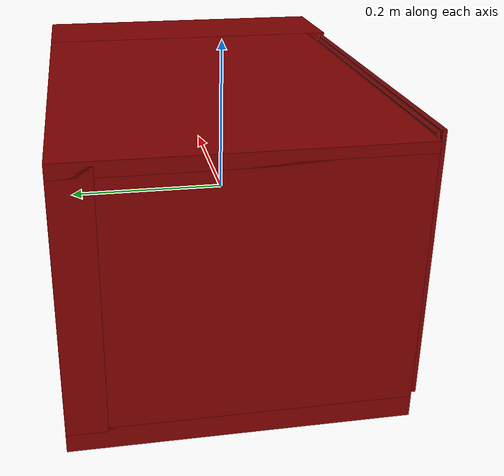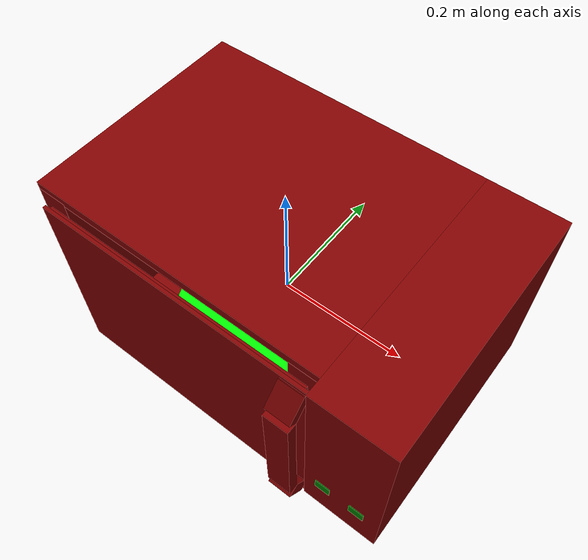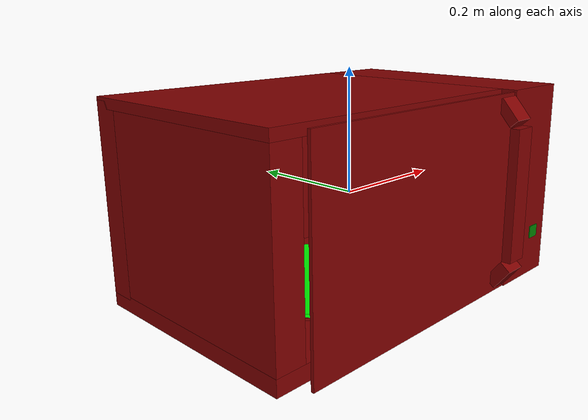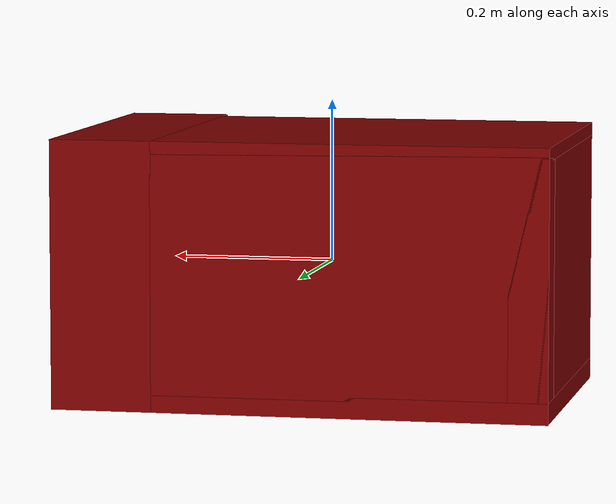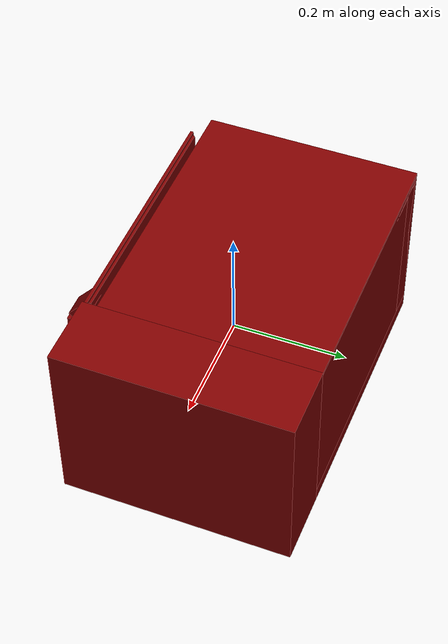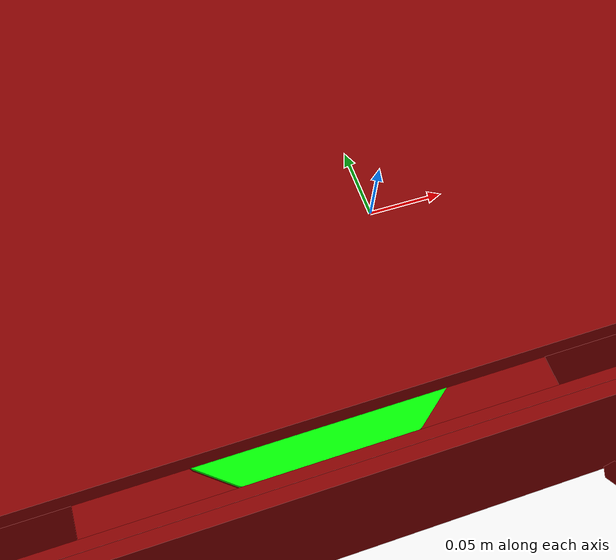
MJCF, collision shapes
<?xml version='1.0' encoding='UTF-8'?>
<mujoco model="model">
  <option timestep="0.002" gravity="0.0 0.0 -9.81"/>
  <compiler angle="radian"/>
  <asset>
    <mesh file="visuals/door.obj" name="door_vis"/>
    <mesh file="visuals/door_Clear.obj" name="door_Clear_vis"/>
    <mesh file="visuals/Body001.obj" name="Body001_vis"/>
    <mesh file="visuals/Disc001.obj" name="Disc001_vis"/>
    <texture file="visuals/T_BC001.png" name="Body001_material" type="2d"/>
    <material name="Body001_material" rgba="1 1 1 1.0" texture="Body001_material" shininess="0.141421377658844" specular="1"/>
    <texture file="visuals/T_BC001.png" name="door_material" type="2d"/>
    <material name="door_material" rgba="1 1 1 1.0" texture="door_material" shininess="1" specular="1"/>
    <material name="door_Clear_material" rgba="0.07379995286464691 0.07379995286464691 0.07379995286464691 0.800000011920929" shininess="0.141421377658844" specular="1"/>
    <texture file="visuals/T_BC001.png" name="Disc001_material" type="2d"/>
    <material name="Disc001_material" rgba="1 1 1 1.0" texture="Disc001_material" shininess="0.141421377658844" specular="1"/>
  </asset>
  <default>
    <default class="visual">
      <geom conaffinity="0" contype="0" group="1" type="mesh"/>
    </default>
    <default class="collision">
      <geom group="0" rgba="0.5 0 0 0.5"/>
    </default>
    <default class="spawn">
      <geom group="0" rgba="1 1 1 0.5" contype="0" conaffinity="0"/>
      <site group="0" rgba="1 1 1 0.5"/>
    </default>
    <default class="region">
      <geom group="1" conaffinity="0" contype="0" rgba="0 1 0 0"/>
    </default>
  </default>
  <worldbody>
    <body>
      <body name="object">
        <geom class="collision" type="cylinder" pos="-0.06085872 0.00446328 -0.12896933" size="0.14400441944599152 0.0028689817991107702" quat="1.0 0.0 0.0 0.0" name="tray" rgba="0 1 0 0.5"/>
        <geom class="collision" type="box" pos="0.26689107 -0.19022940 -0.08845361" size="0.012189998291432858 0.0006485347985289991 0.01066130306571722" quat="1.0 0.0 0.0 0.0" name="start_button" rgba="0.0 0.5 0 0.5"/>
        <geom class="collision" type="box" pos="0.21019979 -0.19022940 -0.08845361" size="0.012152982875704765 0.0006485349731519818 0.010661305859684944" quat="1.0 0.0 0.0 0.0" name="stop_button" rgba="0.0 0.5 0 0.5"/>
        <geom mesh="Body001_vis" type="mesh" solimp="0.998 0.998 0.001" solref="0.001 1" friction="0.95 0.3 0.1" class="visual" material="Body001_material"/>
        <geom class="collision" type="box" pos="0.15546685 0.02762628 0.00226799" size="0.024440431967377663 0.1902388334274292 0.14679104089736938" quat="1.0 0.0 0.0 0.0"/>
        <geom class="collision" type="box" pos="-0.06214744 0.02784108 -0.15128262" size="0.24141666293144226 0.19045361876487732 0.012947039678692818" quat="1.0 0.0 0.0 0.0"/>
        <geom class="collision" type="box" pos="-0.06214744 0.02784108 0.15600638" size="0.24141666293144226 0.19045361876487732 0.00822325237095356" quat="1.0 0.0 0.0 0.0"/>
        <geom class="collision" type="box" pos="-0.06204081 0.19578410 0.00814939" size="0.24152329564094543 0.02251059003174305 0.15125298500061035" quat="1.0 0.0 0.0 0.0"/>
        <geom class="collision" type="box" pos="-0.27918717 0.02784108 0.00431481" size="0.02437685988843441 0.19045361876487732 0.1474177986383438" quat="1.0 0.0 0.0 0.0"/>
        <geom class="collision" type="box" pos="0.24092068 0.01450604 0.00000000" size="0.0626436397433281 0.2037886679172516 0.16422969102859497" quat="1.0 0.0 0.0 0.0"/>
        <body name="door">
          <joint axis="0.0 0.0 1.0" pos="-0.27823880 -0.16256915 0.00000000" limited="true" name="microjoint" range="-1.5707963267948966 0.0" type="hinge" damping="1" frictionloss="1" armature=".01" stiffness="0.05"/>
          <geom mesh="door_vis" type="mesh" solimp="0.998 0.998 0.001" solref="0.001 1" friction="0.95 0.3 0.1" class="visual" material="door_material"/>
          <geom class="collision" type="box" pos="-0.04397308 -0.18410763 -0.00146337" size="0.2210087776184082 0.002577348845079541 0.16276666522026062" quat="1.0 0.0 0.0 0.0"/>
          <geom class="collision" type="box" pos="-0.04397308 -0.17866706 -0.00148614" size="0.21558405458927155 0.002143530873581767 0.1591014713048935" quat="1.0 0.0 0.0 0.0" name="door_main"/>
          <geom class="collision" type="box" pos="0.15720352 -0.19617351 0.13401455" size="0.019342176616191864 0.008749624714255333 0.021491196006536484" quat="0.9371328949928284 -0.3489726781845093 -0.0 0.0"/>
          <geom class="collision" type="box" pos="0.15720352 -0.21261705 0.00313177" size="0.019342176616191864 0.00790762435644865 0.1079619824886322" quat="1.0 0.0 0.0 0.0" name="door_handle_main"/>
          <geom class="collision" type="box" pos="0.15720352 -0.19858710 -0.12997498" size="0.019342176616191864 0.02148124948143959 0.01104703824967146" quat="0.9010329842567444 -0.43375056982040405 -0.0 0.0"/>
          <body name="door_Clear">
            <geom mesh="door_Clear_vis" type="mesh" solimp="0.998 0.998 0.001" solref="0.001 1" friction="0.95 0.3 0.1" class="visual" material="door_Clear_material"/>
            <geom class="collision" type="box" pos="-0.04397308 -0.18410763 -0.00146337" size="0.2210087776184082 0.002577348845079541 0.16276666522026062" quat="1.0 0.0 0.0 0.0"/>
          </body>
        </body>
        <body name="Disc001">
          <joint axis="0.0 0.0 1.0" pos="-0.06085871 0.00446328 -0.13270293" limited="false" name="Disc001_joint" range="0 360" type="hinge" damping="1" frictionloss="1" armature=".01" stiffness="0.05"/>
          <geom mesh="Disc001_vis" type="mesh" solimp="0.998 0.998 0.001" solref="0.001 1" friction="0.95 0.3 0.1" class="visual" material="Disc001_material"/>
          <geom class="collision" type="cylinder" pos="-0.06085872 0.00446329 -0.13405800" size="0.14400441944599152 0.001863789395429194" quat="1.0 0.0 0.0 0.0"/>
        </body>
        <geom class="region" name="reg_int" type="box" pos="-0.062081189999999994 0.006548750000000006 0.00724851" size="0.18819169000000002 0.16329907999999999 0.13434886000000001"/>
        <geom class="region" name="reg_main" type="box" pos="1.0500000000024379e-07 0.014506030000000003 0.0" size="0.304569345 0.2047921 0.16523248"/>
      <geom class="region" name="reg_tray" type="cylinder" pos="-0.06085872 0.00446328 0.007748510899555389" size="0.14400441944599152 0.1328488591004446"/></body>
    </body>
  </worldbody>
  <actuator>
    <motor name="microjoint_actuator" joint="microjoint" gear="10"/>
    <motor name="Disc001_joint_actuator" joint="Disc001_joint" gear="10"/>
  </actuator>
</mujoco>
